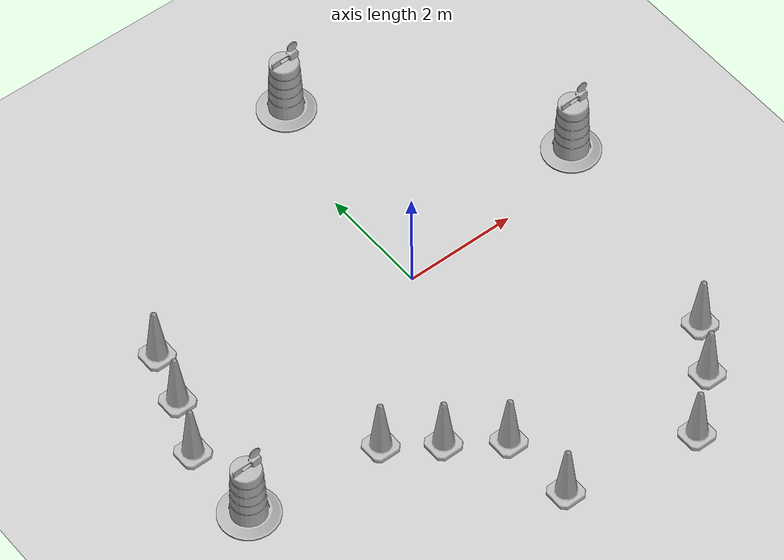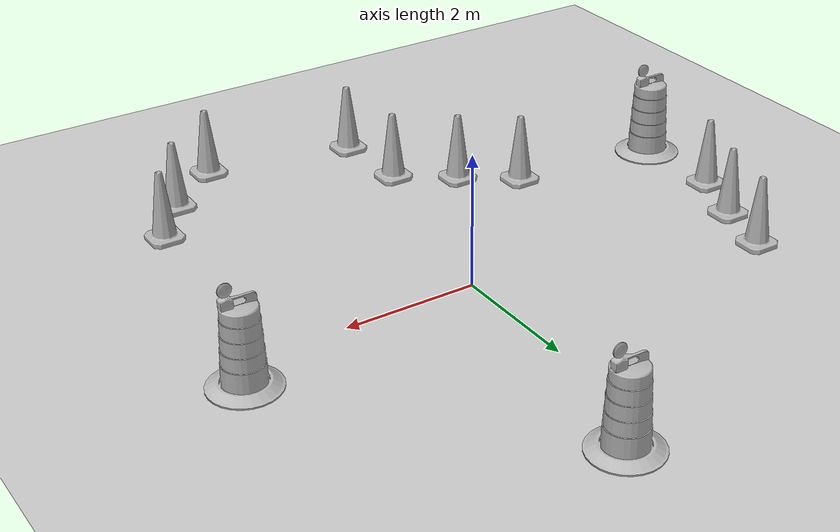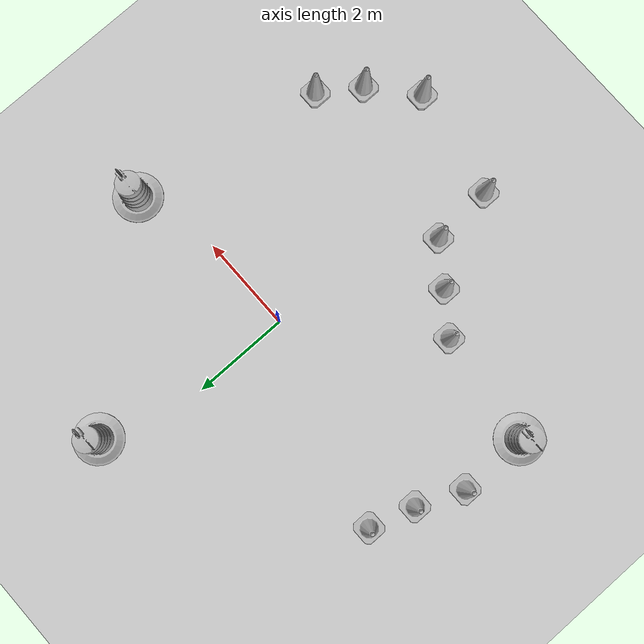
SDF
<sdf version="1.7">
 <world name="default">
  <light name="sun" type="directional">
   <pose>0 0 10 0 -0 0</pose>
   <diffuse>0.8 0.8 0.8 1</diffuse>
   <specular>0.2 0.2 0.2 1</specular>
   <attenuation>
    <range>1000</range>
    <constant>0.9</constant>
    <linear>0.01</linear>
    <quadratic>0.001</quadratic>
   </attenuation>
   <direction>-0.5 0.1 -0.9</direction>
   <spot><inner_angle>0</inner_angle><outer_angle>0</outer_angle><falloff>0</falloff></spot>
  </light>
  <model name="ground_plane">
   <static>1</static>
   <link name="link">
    <collision name="collision">
     <geometry><plane><normal>0 0 1</normal><size>100 100</size></plane></geometry>
     <surface>
      <contact><collide_bitmask>65535</collide_bitmask></contact>
      <friction><ode><mu>100</mu><mu2>50</mu2></ode></friction>
     </surface>
    </collision>
    <visual name="visual">
     <cast_shadows>0</cast_shadows>
     <geometry><plane><normal>0 0 1</normal><size>100 100</size></plane></geometry>
     <material>
      <script><uri>file://media/materials/scripts/gazebo.material</uri><name>Gazebo/Grey</name></script>
     </material>
    </visual>
   </link>
  </model>
  <gravity>0 0 -9.8</gravity>
  <magnetic_field>6e-06 2.3e-05 -4.2e-05</magnetic_field>
  <atmosphere type="adiabatic"/>
  <physics type="ode">
   <max_step_size>0.001</max_step_size>
   <real_time_factor>1</real_time_factor>
   <real_time_update_rate>1000</real_time_update_rate>
  </physics>
  <scene><ambient>0.4 0.4 0.4 1</ambient><background>0.7 0.7 0.7 1</background><shadows>1</shadows></scene>
  <audio><device>default</device></audio>
  <spherical_coordinates>
   <surface_model>EARTH_WGS84</surface_model>
   <latitude_deg>0</latitude_deg>
   <longitude_deg>0</longitude_deg>
   <elevation>0</elevation>
   <heading_deg>0</heading_deg>
  </spherical_coordinates>
  <model name="Construction Barrel">
   <link name="link">
    <inertial>
     <pose>0 0 0.4 0 -0 0</pose>
     <mass>500</mass>
     <inertia><ixx>51.2096</ixx><iyy>51.2096</iyy><izz>25</izz><ixy>0</ixy><ixz>0</ixz><iyz>0</iyz></inertia>
    </inertial>
    <collision name="collision">
     <geometry><mesh><uri>model://construction_barrel/meshes/construction_barrel.dae</uri></mesh></geometry>
    </collision>
    <visual name="visual">
     <geometry><mesh><uri>model://construction_barrel/meshes/construction_barrel.dae</uri></mesh></geometry>
    </visual>
   </link>
   <pose>0.590102 4.09414 -1e-06 1e-06 -9e-06 -2.2e-05</pose>
  </model>
  <model name="Construction Barrel_0">
   <link name="link">
    <inertial>
     <pose>0 0 0.4 0 -0 0</pose>
     <mass>500</mass>
     <inertia><ixx>51.2096</ixx><iyy>51.2096</iyy><izz>25</izz><ixy>0</ixy><ixz>0</ixz><iyz>0</iyz></inertia>
    </inertial>
    <collision name="collision">
     <geometry><mesh><uri>model://construction_barrel/meshes/construction_barrel.dae</uri></mesh></geometry>
    </collision>
    <visual name="visual">
     <geometry><mesh><uri>model://construction_barrel/meshes/construction_barrel.dae</uri></mesh></geometry>
    </visual>
   </link>
   <pose>3.71797 0.473306 -1e-06 1e-06 -9e-06 -2.1e-05</pose>
  </model>
  <model name="Construction Cone">
   <link name="link">
    <collision name="collision">
     <geometry>
      <mesh><scale>10 10 10</scale><uri>model://construction_cone/meshes/construction_cone.dae</uri></mesh>
     </geometry>
    </collision>
    <visual name="visual">
     <geometry>
      <mesh><scale>10 10 10</scale><uri>model://construction_cone/meshes/construction_cone.dae</uri></mesh>
     </geometry>
    </visual>
    <inertial>
     <inertia><ixx>1</ixx><ixy>0</ixy><ixz>0</ixz><iyy>1</iyy><iyz>0</iyz><izz>1</izz></inertia>
     <mass>1</mass>
    </inertial>
   </link>
   <pose>-2.41515 -2.25994 -0 0 -0 0</pose>
  </model>
  <model name="Construction Cone_0">
   <link name="link">
    <collision name="collision">
     <geometry>
      <mesh><scale>10 10 10</scale><uri>model://construction_cone/meshes/construction_cone.dae</uri></mesh>
     </geometry>
    </collision>
    <visual name="visual">
     <geometry>
      <mesh><scale>10 10 10</scale><uri>model://construction_cone/meshes/construction_cone.dae</uri></mesh>
     </geometry>
    </visual>
    <inertial>
     <inertia><ixx>1</ixx><ixy>0</ixy><ixz>0</ixz><iyy>1</iyy><iyz>0</iyz><izz>1</izz></inertia>
     <mass>1</mass>
    </inertial>
   </link>
   <pose>-1.63391 -2.83573 -0 0 -0 0</pose>
  </model>
  <model name="Construction Cone_1">
   <link name="link">
    <collision name="collision">
     <geometry>
      <mesh><scale>10 10 10</scale><uri>model://construction_cone/meshes/construction_cone.dae</uri></mesh>
     </geometry>
    </collision>
    <visual name="visual">
     <geometry>
      <mesh><scale>10 10 10</scale><uri>model://construction_cone/meshes/construction_cone.dae</uri></mesh>
     </geometry>
    </visual>
    <inertial>
     <inertia><ixx>1</ixx><ixy>0</ixy><ixz>0</ixz><iyy>1</iyy><iyz>0</iyz><izz>1</izz></inertia>
     <mass>1</mass>
    </inertial>
   </link>
   <pose>-0.815711 -3.432 -0 0 -1e-06 0</pose>
  </model>
  <model name="Construction Cone_2">
   <link name="link">
    <collision name="collision">
     <geometry>
      <mesh><scale>10 10 10</scale><uri>model://construction_cone/meshes/construction_cone.dae</uri></mesh>
     </geometry>
    </collision>
    <visual name="visual">
     <geometry>
      <mesh><scale>10 10 10</scale><uri>model://construction_cone/meshes/construction_cone.dae</uri></mesh>
     </geometry>
    </visual>
    <inertial>
     <inertia><ixx>1</ixx><ixy>0</ixy><ixz>0</ixz><iyy>1</iyy><iyz>0</iyz><izz>1</izz></inertia>
     <mass>1</mass>
    </inertial>
   </link>
   <pose>2.99543 -3.56488 -0 0 -0 0</pose>
  </model>
  <model name="Construction Cone_3">
   <link name="link">
    <collision name="collision">
     <geometry>
      <mesh><scale>10 10 10</scale><uri>model://construction_cone/meshes/construction_cone.dae</uri></mesh>
     </geometry>
    </collision>
    <visual name="visual">
     <geometry>
      <mesh><scale>10 10 10</scale><uri>model://construction_cone/meshes/construction_cone.dae</uri></mesh>
     </geometry>
    </visual>
    <inertial>
     <inertia><ixx>1</ixx><ixy>0</ixy><ixz>0</ixz><iyy>1</iyy><iyz>0</iyz><izz>1</izz></inertia>
     <mass>1</mass>
    </inertial>
   </link>
   <pose>-4.08084 1.30999 -1e-05 -1e-06 0 0</pose>
  </model>
  <model name="Construction Cone_4">
   <link name="link">
    <collision name="collision">
     <geometry>
      <mesh><scale>10 10 10</scale><uri>model://construction_cone/meshes/construction_cone.dae</uri></mesh>
     </geometry>
    </collision>
    <visual name="visual">
     <geometry>
      <mesh><scale>10 10 10</scale><uri>model://construction_cone/meshes/construction_cone.dae</uri></mesh>
     </geometry>
    </visual>
    <inertial>
     <inertia><ixx>1</ixx><ixy>0</ixy><ixz>0</ixz><iyy>1</iyy><iyz>0</iyz><izz>1</izz></inertia>
     <mass>1</mass>
    </inertial>
   </link>
   <pose>-0.736528 -4.71255 -0 0 -0 0</pose>
  </model>
  <model name="Construction Cone_5">
   <link name="link">
    <collision name="collision">
     <geometry>
      <mesh><scale>10 10 10</scale><uri>model://construction_cone/meshes/construction_cone.dae</uri></mesh>
     </geometry>
    </collision>
    <visual name="visual">
     <geometry>
      <mesh><scale>10 10 10</scale><uri>model://construction_cone/meshes/construction_cone.dae</uri></mesh>
     </geometry>
    </visual>
    <inertial>
     <inertia><ixx>1</ixx><ixy>0</ixy><ixz>0</ixz><iyy>1</iyy><iyz>0</iyz><izz>1</izz></inertia>
     <mass>1</mass>
    </inertial>
   </link>
   <pose>-4.36057 0.389724 -0 0 -1e-06 0</pose>
  </model>
  <model name="Construction Cone_6">
   <link name="link">
    <collision name="collision">
     <geometry>
      <mesh><scale>10 10 10</scale><uri>model://construction_cone/meshes/construction_cone.dae</uri></mesh>
     </geometry>
    </collision>
    <visual name="visual">
     <geometry>
      <mesh><scale>10 10 10</scale><uri>model://construction_cone/meshes/construction_cone.dae</uri></mesh>
     </geometry>
    </visual>
    <inertial>
     <inertia><ixx>1</ixx><ixy>0</ixy><ixz>0</ixz><iyy>1</iyy><iyz>0</iyz><izz>1</izz></inertia>
     <mass>1</mass>
    </inertial>
   </link>
   <pose>-4.75407 -0.547878 -0 0 -1e-06 0</pose>
  </model>
  <model name="Construction Barrel_1">
   <link name="link">
    <inertial>
     <pose>0 0 0.4 0 -0 0</pose>
     <mass>500</mass>
     <inertia><ixx>51.2096</ixx><iyy>51.2096</iyy><izz>25</izz><ixy>0</ixy><ixz>0</ixz><iyz>0</iyz></inertia>
    </inertial>
    <collision name="collision">
     <geometry><mesh><uri>model://construction_barrel/meshes/construction_barrel.dae</uri></mesh></geometry>
    </collision>
    <visual name="visual">
     <geometry><mesh><uri>model://construction_barrel/meshes/construction_barrel.dae</uri></mesh></geometry>
    </visual>
   </link>
   <pose>-4.74287 -1.97333 1e-06 1e-06 1e-06 -8e-06</pose>
  </model>
  <model name="Construction Cone_7">
   <link name="link">
    <collision name="collision">
     <geometry>
      <mesh><scale>10 10 10</scale><uri>model://construction_cone/meshes/construction_cone.dae</uri></mesh>
     </geometry>
    </collision>
    <visual name="visual">
     <geometry>
      <mesh><scale>10 10 10</scale><uri>model://construction_cone/meshes/construction_cone.dae</uri></mesh>
     </geometry>
    </visual>
    <inertial>
     <inertia><ixx>1</ixx><ixy>0</ixy><ixz>0</ixz><iyy>1</iyy><iyz>0</iyz><izz>1</izz></inertia>
     <mass>1</mass>
    </inertial>
   </link>
   <pose>2.4441 -4.36519 0 -0 -0 -0</pose>
  </model>
  <model name="Construction Cone_8">
   <link name="link">
    <collision name="collision">
     <geometry>
      <mesh><scale>10 10 10</scale><uri>model://construction_cone/meshes/construction_cone.dae</uri></mesh>
     </geometry>
    </collision>
    <visual name="visual">
     <geometry>
      <mesh><scale>10 10 10</scale><uri>model://construction_cone/meshes/construction_cone.dae</uri></mesh>
     </geometry>
    </visual>
    <inertial>
     <inertia><ixx>1</ixx><ixy>0</ixy><ixz>0</ixz><iyy>1</iyy><iyz>0</iyz><izz>1</izz></inertia>
     <mass>1</mass>
    </inertial>
   </link>
   <pose>1.54934 -5.14106 -0 0 -1e-06 0</pose>
  </model>
 </world>
</sdf>
